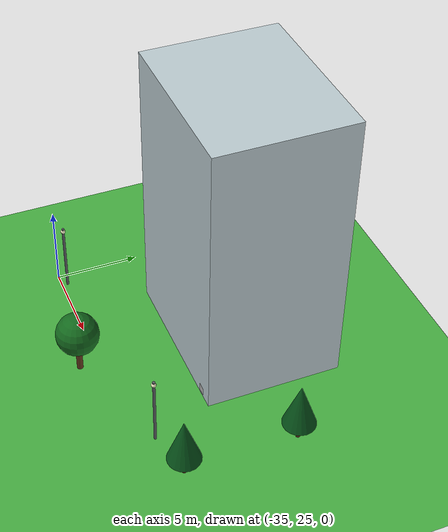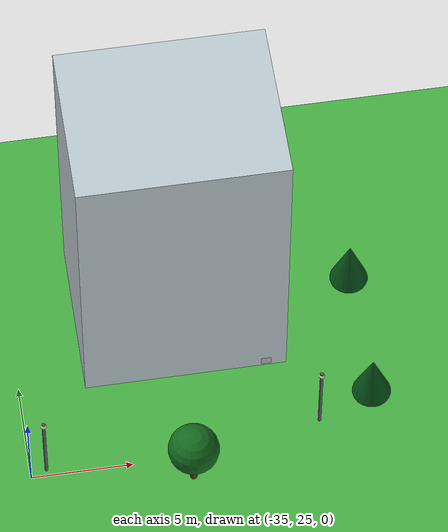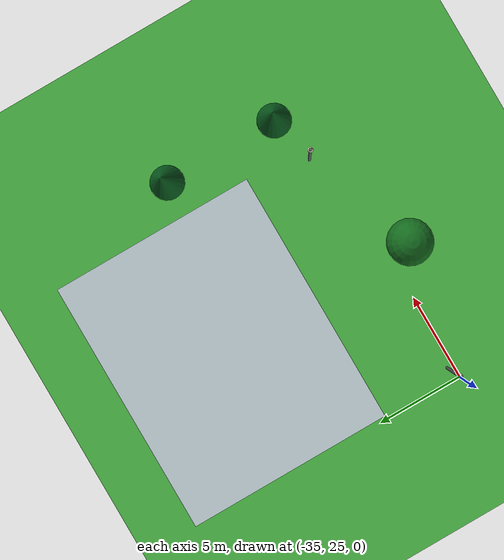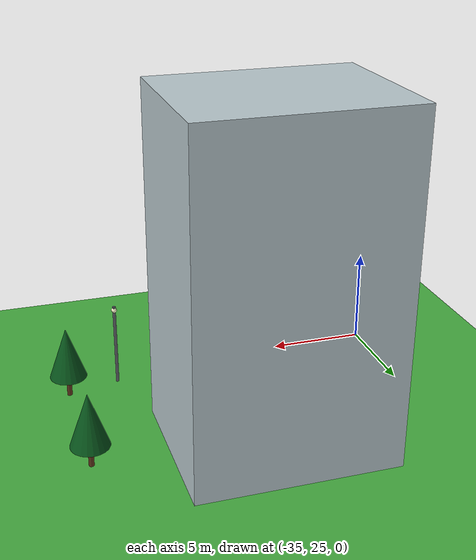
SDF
<sdf version="1.10">
 <world name="city_second">
  <model name="ground_plane">
   <static>true</static>
   <link name="link">
    <collision name="collision">
     <geometry><plane><normal>0 0 1</normal><size>300 300</size></plane></geometry>
    </collision>
    <visual name="visual">
     <geometry><plane><normal>0 0 1</normal><size>300 300</size></plane></geometry>
     <material>
      <ambient>0.280000001 0.689999998 0.25999999 1</ambient>
      <diffuse>0.280000001 0.689999998 0.25999999 1</diffuse>
      <specular>0.0299999993 0.0299999993 0.0299999993 1</specular>
     </material>
    </visual>
    <inertial>
     <mass>1</mass>
     <inertia><ixx>1</ixx><ixy>0</ixy><ixz>0</ixz><iyy>1</iyy><iyz>0</iyz><izz>1</izz></inertia>
    </inertial>
   </link>
  </model>
  <model name="house_3_1_1">
   <static>true</static>
   <pose>-26.744800000000001 33.608600000000003 8.5 0 0 0</pose>
   <link name="link">
    <collision name="collision"><geometry><box><size>10 8 17</size></box></geometry></collision>
    <visual name="visual">
     <geometry><box><size>10 8 17</size></box></geometry>
     <material>
      <ambient>0.74000001 0.800000012 0.819999993 1</ambient>
      <diffuse>0.74000001 0.800000012 0.819999993 1</diffuse>
      <specular>0.0299999993 0.0299999993 0.0299999993 1</specular>
     </material>
    </visual>
    <inertial>
     <mass>1</mass>
     <inertia><ixx>1</ixx><ixy>0</ixy><ixz>0</ixz><iyy>1</iyy><iyz>0</iyz><izz>1</izz></inertia>
    </inertial>
   </link>
  </model>
  <model name="lamp_1_2_16">
   <static>true</static>
   <pose>-34.215200000000003 25.3385 2.2000000000000002 0 0 0</pose>
   <link name="link">
    <collision name="collision">
     <geometry>
      <cylinder><radius>0.080000000000000002</radius><length>4.4000000000000004</length></cylinder>
     </geometry>
    </collision>
    <visual name="pole">
     <geometry>
      <cylinder><radius>0.080000000000000002</radius><length>4.4000000000000004</length></cylinder>
     </geometry>
     <material>
      <ambient>0.349999994 0.360000014 0.379999995 1</ambient>
      <diffuse>0.349999994 0.360000014 0.379999995 1</diffuse>
      <specular>0.0299999993 0.0299999993 0.0299999993 1</specular>
     </material>
    </visual>
    <visual name="lamp_head">
     <pose>0 0 2 0 0 0</pose>
     <geometry><sphere><radius>0.14000000000000001</radius></sphere></geometry>
     <material>
      <ambient>0.959999979 0.939999998 0.779999971 1</ambient>
      <diffuse>0.959999979 0.939999998 0.779999971 1</diffuse>
      <specular>0.0299999993 0.0299999993 0.0299999993 1</specular>
     </material>
    </visual>
    <inertial>
     <mass>1</mass>
     <inertia><ixx>1</ixx><ixy>0</ixy><ixz>0</ixz><iyy>1</iyy><iyz>0</iyz><izz>1</izz></inertia>
    </inertial>
   </link>
  </model>
  <model name="lamp_1_2_17">
   <static>true</static>
   <pose>-20.669599999999999 26.0932 2.2000000000000002 0 0 0</pose>
   <link name="link">
    <collision name="collision">
     <geometry>
      <cylinder><radius>0.080000000000000002</radius><length>4.4000000000000004</length></cylinder>
     </geometry>
    </collision>
    <visual name="pole">
     <geometry>
      <cylinder><radius>0.080000000000000002</radius><length>4.4000000000000004</length></cylinder>
     </geometry>
     <material>
      <ambient>0.349999994 0.360000014 0.379999995 1</ambient>
      <diffuse>0.349999994 0.360000014 0.379999995 1</diffuse>
      <specular>0.0299999993 0.0299999993 0.0299999993 1</specular>
     </material>
    </visual>
    <visual name="lamp_head">
     <pose>0 0 2 0 0 0</pose>
     <geometry><sphere><radius>0.14000000000000001</radius></sphere></geometry>
     <material>
      <ambient>0.959999979 0.939999998 0.779999971 1</ambient>
      <diffuse>0.959999979 0.939999998 0.779999971 1</diffuse>
      <specular>0.0299999993 0.0299999993 0.0299999993 1</specular>
     </material>
    </visual>
    <inertial>
     <mass>1</mass>
     <inertia><ixx>1</ixx><ixy>0</ixy><ixz>0</ixz><iyy>1</iyy><iyz>0</iyz><izz>1</izz></inertia>
    </inertial>
   </link>
  </model>
  <model name="Oak tree_1">
   <static>true</static>
   <pose>-27.205400000000001 23.9285 0 0 0 0</pose>
   <link name="link">
    <collision name="footprint">
     <pose>0 0 0.050000000000000003 0 0 0</pose>
     <geometry>
      <cylinder><radius>0.90000000000000002</radius><length>0.10000000000000001</length></cylinder>
     </geometry>
    </collision>
    <visual name="trunk">
     <pose>0 0 1.1000000000000001 0 0 0</pose>
     <geometry>
      <cylinder><radius>0.17999999999999999</radius><length>2.2000000000000002</length></cylinder>
     </geometry>
     <material>
      <ambient>0.379999995 0.219999999 0.109999999 1</ambient>
      <diffuse>0.379999995 0.219999999 0.109999999 1</diffuse>
      <specular>0.119999997 0.119999997 0.119999997 1</specular>
      <emissive>0 0 0 1</emissive>
     </material>
    </visual>
    <visual name="crown">
     <pose>0 0 2.6499999999999999 0 0 0</pose>
     <geometry><sphere><radius>1.25</radius></sphere></geometry>
     <material>
      <ambient>0.0799999982 0.419999987 0.119999997 1</ambient>
      <diffuse>0.0799999982 0.419999987 0.119999997 1</diffuse>
      <specular>0.119999997 0.119999997 0.119999997 1</specular>
      <emissive>0 0 0 1</emissive>
     </material>
    </visual>
    <inertial>
     <mass>1</mass>
     <inertia><ixx>1</ixx><ixy>0</ixy><ixz>0</ixz><iyy>1</iyy><iyz>0</iyz><izz>1</izz></inertia>
    </inertial>
   </link>
  </model>
  <model name="Pine Tree_0">
   <static>true</static>
   <pose>-18.005600000000001 33.315300000000001 0 0 0 0</pose>
   <link name="link">
    <collision name="footprint">
     <pose>0 0 0.050000000000000003 0 0 0</pose>
     <geometry>
      <cylinder><radius>0.65000000000000002</radius><length>0.10000000000000001</length></cylinder>
     </geometry>
    </collision>
    <visual name="trunk">
     <pose>0 0 0.90000000000000002 0 0 0</pose>
     <geometry><cylinder><radius>0.13</radius><length>1.8</length></cylinder></geometry>
     <material>
      <ambient>0.360000014 0.200000003 0.100000001 1</ambient>
      <diffuse>0.360000014 0.200000003 0.100000001 1</diffuse>
      <specular>0.119999997 0.119999997 0.119999997 1</specular>
      <emissive>0 0 0 1</emissive>
     </material>
    </visual>
    <visual name="crown">
     <pose>0 0 2.4500000000000002 0 0 0</pose>
     <geometry><cone><radius>0.94999999999999996</radius><length>2.7000000000000002</length></cone></geometry>
     <material>
      <ambient>0.0299999993 0.340000004 0.109999999 1</ambient>
      <diffuse>0.0299999993 0.340000004 0.109999999 1</diffuse>
      <specular>0.119999997 0.119999997 0.119999997 1</specular>
      <emissive>0 0 0 1</emissive>
     </material>
    </visual>
    <inertial>
     <mass>1</mass>
     <inertia><ixx>1</ixx><ixy>0</ixy><ixz>0</ixz><iyy>1</iyy><iyz>0</iyz><izz>1</izz></inertia>
    </inertial>
   </link>
  </model>
  <model name="Pine Tree_6">
   <static>true</static>
   <pose>-18.019400000000001 26.7318 0 0 0 0</pose>
   <link name="link">
    <collision name="footprint">
     <pose>0 0 0.050000000000000003 0 0 0</pose>
     <geometry>
      <cylinder><radius>0.65000000000000002</radius><length>0.10000000000000001</length></cylinder>
     </geometry>
    </collision>
    <visual name="trunk">
     <pose>0 0 0.90000000000000002 0 0 0</pose>
     <geometry><cylinder><radius>0.13</radius><length>1.8</length></cylinder></geometry>
     <material>
      <ambient>0.360000014 0.200000003 0.100000001 1</ambient>
      <diffuse>0.360000014 0.200000003 0.100000001 1</diffuse>
      <specular>0.119999997 0.119999997 0.119999997 1</specular>
      <emissive>0 0 0 1</emissive>
     </material>
    </visual>
    <visual name="crown">
     <pose>0 0 2.4500000000000002 0 0 0</pose>
     <geometry><cone><radius>0.94999999999999996</radius><length>2.7000000000000002</length></cone></geometry>
     <material>
      <ambient>0.0299999993 0.340000004 0.109999999 1</ambient>
      <diffuse>0.0299999993 0.340000004 0.109999999 1</diffuse>
      <specular>0.119999997 0.119999997 0.119999997 1</specular>
      <emissive>0 0 0 1</emissive>
     </material>
    </visual>
    <inertial>
     <mass>1</mass>
     <inertia><ixx>1</ixx><ixy>0</ixy><ixz>0</ixz><iyy>1</iyy><iyz>0</iyz><izz>1</izz></inertia>
    </inertial>
   </link>
  </model>
  <model name="Apriltag36_11_00000_0">
   <link name="link">
    <inertial>
     <mass>0.5</mass>
     <inertia><ixx>0.0001</ixx><ixy>0</ixy><ixz>0</ixz><iyy>0.0001</iyy><iyz>0</iyz><izz>0.0001</izz></inertia>
    </inertial>
    <collision name="collision">
     <geometry>
      <mesh><uri>model://Apriltag36_11_00000/meshes/tag36_11_00000.dae</uri><scale>3 3 1</scale></mesh>
     </geometry>
     <surface>
      <friction><ode><mu>1</mu><mu2>1</mu2></ode></friction>
      <contact>
       <ode><kp>10000000</kp><kd>1</kd><min_depth>0.001</min_depth><max_vel>0.10000000000000001</max_vel></ode>
      </contact>
     </surface>
    </collision>
    <visual name="visual">
     <geometry>
      <mesh><uri>model://Apriltag36_11_00000/meshes/tag36_11_00000.dae</uri><scale>1.25 1.25 1</scale></mesh>
     </geometry>
    </visual>
   </link>
   <pose>-22.743400573730469 29.606100082397461 0.34999999403953552 -1.5734835974782302 1.5707899788477593 3.1348903219746465</pose>
   <static>true</static>
  </model>
 </world>
</sdf>
